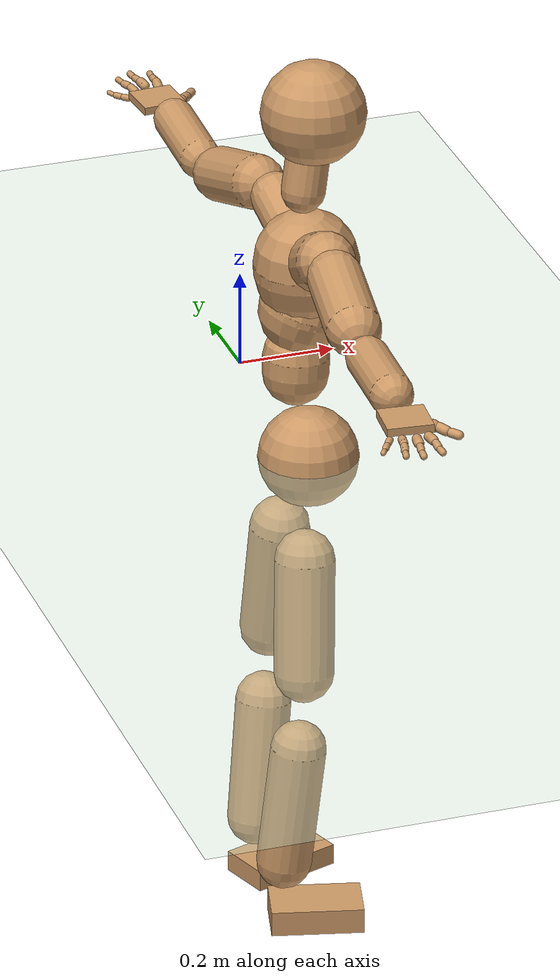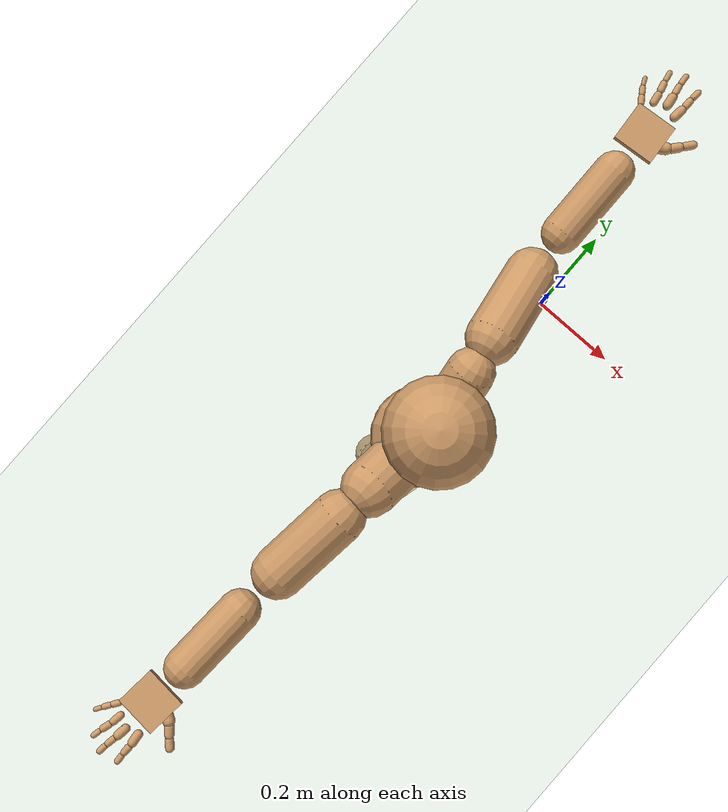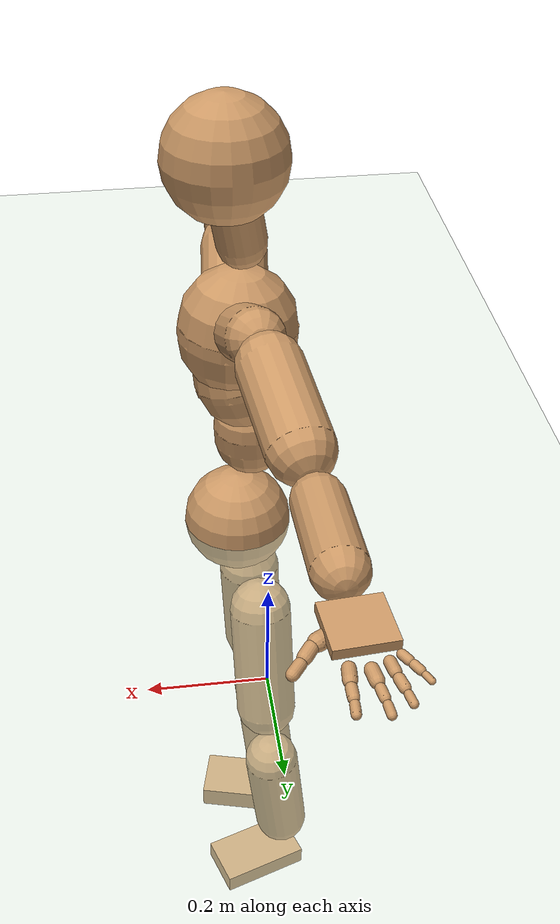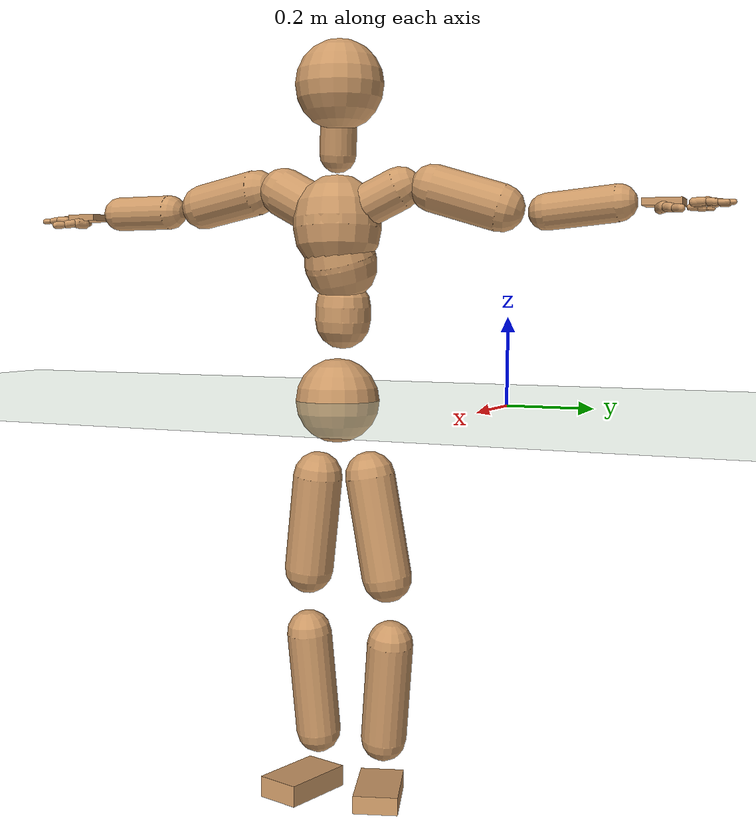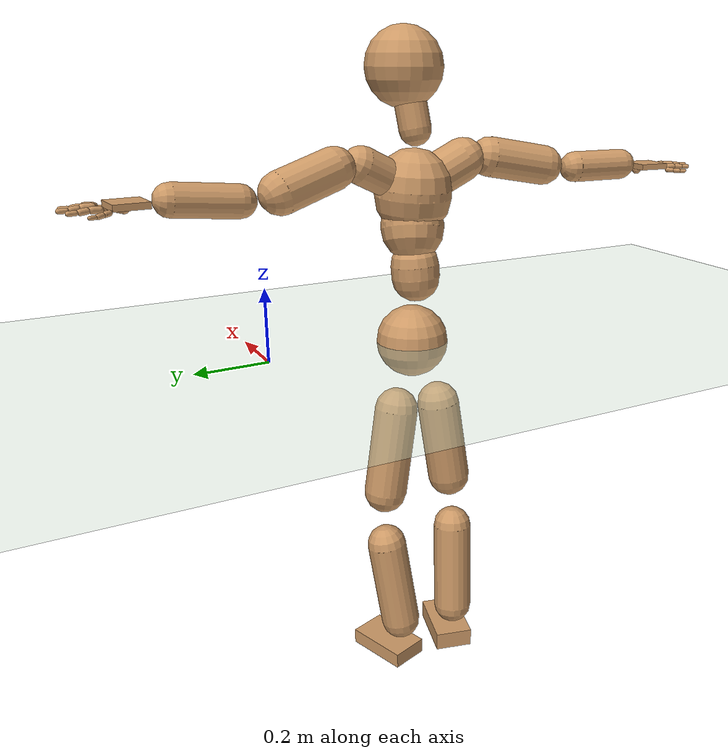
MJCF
<mujoco model="humanoid">
  <compiler coordinate="local" angle="radian"/>
  <default>
    <joint damping="0.0" armature="0.01" stiffness="0.0" limited="true"/>
    <geom conaffinity="1" condim="3" contype="7" margin="0.001" rgba="0.8 0.6 .4 1"/>
  </default>
  <asset>
    <texture type="skybox" builtin="gradient" rgb1=".4 .5 .6" rgb2="0 0 0" width="100" height="100"/>
    <texture builtin="flat" height="1278" mark="cross" markrgb="1 1 1" name="texgeom" random="0.01" rgb1="0.8 0.6 0.4" rgb2="0.8 0.6 0.4" type="cube" width="127"/>
    <texture builtin="checker" height="100" name="texplane" rgb1="0 0 0" rgb2="0.8 0.8 0.8" type="2d" width="100"/>
    <material name="MatPlane" reflectance="0.5" shininess="1" specular="1" texrepeat="60 60" texture="texplane"/>
    <material name="geom" texture="texgeom" texuniform="true"/>
  </asset>
  <worldbody>
    <light cutoff="100" diffuse="1 1 1" dir="-0 0 -1.3" directional="true" exponent="1" pos="0 0 1.3" specular=".1 .1 .1"/>
    <geom conaffinity="1" condim="3" name="floor" pos="0 0 0" rgba="0.8 0.9 0.8 1" size="100 100 .2" type="plane" material="MatPlane"/>
    <body name="Pelvis" pos="0.0008 -0.4273 -0.0031">
      <freejoint name="Pelvis"/>
      <geom type="sphere" contype="1" conaffinity="1" density="500" size="0.1017" pos="0.0000 0.0000 0.0000" name="Pelvis"/>
      <body name="L_Hip" pos="-0.0333 0.0566 -0.1023">
        <joint name="L_Hip_x" type="hinge" pos="0 0 0" axis="1 0 0" stiffness="800" damping="80" armature="0.02" range="-180.0000 180.0000"/>
        <joint name="L_Hip_y" type="hinge" pos="0 0 0" axis="0 1 0" stiffness="800" damping="80" armature="0.02" range="-180.0000 180.0000"/>
        <joint name="L_Hip_z" type="hinge" pos="0 0 0" axis="0 0 1" stiffness="800" damping="80" armature="0.02" range="-180.0000 180.0000"/>
        <geom type="capsule" contype="1" conaffinity="1" density="500" fromto="-0.0026 0.0139 -0.0826 -0.0102 0.0557 -0.3305" size="0.0609" name="L_Hip"/>
        <body name="L_Knee" pos="-0.0128 0.0696 -0.4132">
          <joint name="L_Knee_x" type="hinge" pos="0 0 0" axis="1 0 0" stiffness="800" damping="80" armature="0.02" range="-180.0000 180.0000"/>
          <joint name="L_Knee_y" type="hinge" pos="0 0 0" axis="0 1 0" stiffness="800" damping="80" armature="0.02" range="-180.0000 180.0000"/>
          <joint name="L_Knee_z" type="hinge" pos="0 0 0" axis="0 0 1" stiffness="800" damping="80" armature="0.02" range="-180.0000 180.0000"/>
          <geom type="capsule" contype="1" conaffinity="1" density="500" fromto="-0.0093 -0.0097 -0.0844 -0.0373 -0.0389 -0.3375" size="0.0566" name="L_Knee"/>
          <body name="L_Ankle" pos="-0.0467 -0.0486 -0.4219">
            <joint name="L_Ankle_x" type="hinge" pos="0 0 0" axis="1 0 0" stiffness="800" damping="80" armature="0.02" range="-180.0000 180.0000"/>
            <joint name="L_Ankle_y" type="hinge" pos="0 0 0" axis="0 1 0" stiffness="800" damping="80" armature="0.02" range="-180.0000 180.0000"/>
            <joint name="L_Ankle_z" type="hinge" pos="0 0 0" axis="0 0 1" stiffness="800" damping="80" armature="0.02" range="-180.0000 180.0000"/>
            <geom type="box" contype="1" conaffinity="1" density="500" pos="0.0693 0.0233 -0.0307" size="0.0937 0.0543 0.022" quat="0.9869 0.0000 0.0000 0.1616" name="L_Ankle"/>
            <body name="L_Toe" pos="0.1386 0.0466 -0.0614">
              <joint name="L_Toe_x" type="hinge" pos="0 0 0" axis="1 0 0" stiffness="500" damping="50" armature="0.02" range="-180.0000 180.0000"/>
              <joint name="L_Toe_y" type="hinge" pos="0 0 0" axis="0 1 0" stiffness="500" damping="50" armature="0.02" range="-180.0000 180.0000"/>
              <joint name="L_Toe_z" type="hinge" pos="0 0 0" axis="0 0 1" stiffness="500" damping="50" armature="0.02" range="-180.0000 180.0000"/>
              <geom type="box" contype="1" conaffinity="1" density="500" pos="0.0000 0.0000 0.0304" size="0.0011 0.0026 0.0011" quat="0.9862 0.0000 0.0000 0.1658" name="L_Toe"/>
            </body>
          </body>
        </body>
      </body>
      <body name="R_Hip" pos="-0.0265 -0.0582 -0.1126">
        <joint name="R_Hip_x" type="hinge" pos="0 0 0" axis="1 0 0" stiffness="800" damping="80" armature="0.02" range="-180.0000 180.0000"/>
        <joint name="R_Hip_y" type="hinge" pos="0 0 0" axis="0 1 0" stiffness="800" damping="80" armature="0.02" range="-180.0000 180.0000"/>
        <joint name="R_Hip_z" type="hinge" pos="0 0 0" axis="0 0 1" stiffness="800" damping="80" armature="0.02" range="-180.0000 180.0000"/>
        <geom type="capsule" contype="1" conaffinity="1" density="500" fromto="-0.0041 -0.0105 -0.0792 -0.0162 -0.0420 -0.3168" size="0.0607" name="R_Hip"/>
        <body name="R_Knee" pos="-0.0203 -0.0525 -0.396">
          <joint name="R_Knee_x" type="hinge" pos="0 0 0" axis="1 0 0" stiffness="800" damping="80" armature="0.02" range="-180.0000 180.0000"/>
          <joint name="R_Knee_y" type="hinge" pos="0 0 0" axis="0 1 0" stiffness="800" damping="80" armature="0.02" range="-180.0000 180.0000"/>
          <joint name="R_Knee_z" type="hinge" pos="0 0 0" axis="0 0 1" stiffness="800" damping="80" armature="0.02" range="-180.0000 180.0000"/>
          <geom type="capsule" contype="1" conaffinity="1" density="500" fromto="-0.0091 0.0039 -0.0872 -0.0362 0.0155 -0.3488" size="0.0563" name="R_Knee"/>
          <body name="R_Ankle" pos="-0.0453 0.0194 -0.436">
            <joint name="R_Ankle_x" type="hinge" pos="0 0 0" axis="1 0 0" stiffness="800" damping="80" armature="0.02" range="-180.0000 180.0000"/>
            <joint name="R_Ankle_y" type="hinge" pos="0 0 0" axis="0 1 0" stiffness="800" damping="80" armature="0.02" range="-180.0000 180.0000"/>
            <joint name="R_Ankle_z" type="hinge" pos="0 0 0" axis="0 0 1" stiffness="800" damping="80" armature="0.02" range="-180.0000 180.0000"/>
            <geom type="box" contype="1" conaffinity="1" density="500" pos="0.0724 -0.0183 -0.0303" size="0.0937 0.0551 0.0264" quat="0.9923 0.0000 0.0000 -0.1238" name="R_Ankle"/>
            <body name="R_Toe" pos="0.1447 -0.0367 -0.0606">
              <joint name="R_Toe_x" type="hinge" pos="0 0 0" axis="1 0 0" stiffness="500" damping="50" armature="0.02" range="-180.0000 180.0000"/>
              <joint name="R_Toe_y" type="hinge" pos="0 0 0" axis="0 1 0" stiffness="500" damping="50" armature="0.02" range="-180.0000 180.0000"/>
              <joint name="R_Toe_z" type="hinge" pos="0 0 0" axis="0 0 1" stiffness="500" damping="50" armature="0.02" range="-180.0000 180.0000"/>
              <geom type="box" contype="1" conaffinity="1" density="500" pos="0.0000 0.0000 0.0256" size="0.001 0.0026 0.0011" quat="0.9933 0.0000 0.0000 -0.1158" name="R_Toe"/>
            </body>
          </body>
        </body>
      </body>
      <body name="Torso" pos="-0.03 -0.0019 0.1197">
        <joint name="Torso_x" type="hinge" pos="0 0 0" axis="1 0 0" stiffness="1000" damping="100" armature="0.02" range="-180.0000 180.0000"/>
        <joint name="Torso_y" type="hinge" pos="0 0 0" axis="0 1 0" stiffness="1000" damping="100" armature="0.02" range="-180.0000 180.0000"/>
        <joint name="Torso_z" type="hinge" pos="0 0 0" axis="0 0 1" stiffness="1000" damping="100" armature="0.02" range="-180.0000 180.0000"/>
        <geom type="capsule" contype="1" conaffinity="1" density="500" fromto="0.0054 0.0057 0.1055 0.0036 0.0038 0.0704" size="0.0668" name="Torso"/>
        <body name="Spine" pos="0.009 0.0095 0.1759">
          <joint name="Spine_x" type="hinge" pos="0 0 0" axis="1 0 0" stiffness="1000" damping="100" armature="0.02" range="-180.0000 180.0000"/>
          <joint name="Spine_y" type="hinge" pos="0 0 0" axis="0 1 0" stiffness="1000" damping="100" armature="0.02" range="-180.0000 180.0000"/>
          <joint name="Spine_z" type="hinge" pos="0 0 0" axis="0 0 1" stiffness="1000" damping="100" armature="0.02" range="-180.0000 180.0000"/>
          <geom type="capsule" contype="1" conaffinity="1" density="500" fromto="0.0118 -0.0049 0.0398 0.0079 -0.0033 0.0266" size="0.0868" name="Spine"/>
          <body name="Chest" pos="0.0197 -0.0082 0.0664">
            <joint name="Chest_x" type="hinge" pos="0 0 0" axis="1 0 0" stiffness="1000" damping="100" armature="0.02" range="-180.0000 180.0000"/>
            <joint name="Chest_y" type="hinge" pos="0 0 0" axis="0 1 0" stiffness="1000" damping="100" armature="0.02" range="-180.0000 180.0000"/>
            <joint name="Chest_z" type="hinge" pos="0 0 0" axis="0 0 1" stiffness="1000" damping="100" armature="0.02" range="-180.0000 180.0000"/>
            <geom type="capsule" contype="1" conaffinity="1" density="500" fromto="-0.0047 -0.0021 0.0702 -0.0032 -0.0014 0.0468" size="0.1055" name="Chest"/>
            <body name="Neck" pos="-0.0188 -0.0085 0.1835">
              <joint name="Neck_x" type="hinge" pos="0 0 0" axis="1 0 0" stiffness="500" damping="50" armature="0.02" range="-180.0000 180.0000"/>
              <joint name="Neck_y" type="hinge" pos="0 0 0" axis="0 1 0" stiffness="500" damping="50" armature="0.02" range="-180.0000 180.0000"/>
              <joint name="Neck_z" type="hinge" pos="0 0 0" axis="0 0 1" stiffness="500" damping="50" armature="0.02" range="-180.0000 180.0000"/>
              <geom type="capsule" contype="1" conaffinity="1" density="500" fromto="0.0068 0.0044 0.0390 0.0271 0.0178 0.1561" size="0.0438" name="Neck"/>
              <body name="Head" pos="0.0339 0.0222 0.1951">
                <joint name="Head_x" type="hinge" pos="0 0 0" axis="1 0 0" stiffness="500" damping="50" armature="0.02" range="-180.0000 180.0000"/>
                <joint name="Head_y" type="hinge" pos="0 0 0" axis="0 1 0" stiffness="500" damping="50" armature="0.02" range="-180.0000 180.0000"/>
                <joint name="Head_z" type="hinge" pos="0 0 0" axis="0 0 1" stiffness="500" damping="50" armature="0.02" range="-180.0000 180.0000"/>
                <geom type="sphere" contype="1" conaffinity="1" density="500" size="0.1049" pos="0.0000 0.0000 0.0000" name="Head"/>
              </body>
            </body>
            <body name="L_Thorax" pos="-0.0004 0.0423 0.0837">
              <joint name="L_Thorax_x" type="hinge" pos="0 0 0" axis="1 0 0" stiffness="500" damping="50" armature="0.02" range="-180.0000 180.0000"/>
              <joint name="L_Thorax_y" type="hinge" pos="0 0 0" axis="0 1 0" stiffness="500" damping="50" armature="0.02" range="-180.0000 180.0000"/>
              <joint name="L_Thorax_z" type="hinge" pos="0 0 0" axis="0 0 1" stiffness="500" damping="50" armature="0.02" range="-180.0000 180.0000"/>
              <geom type="capsule" contype="1" conaffinity="1" density="500" fromto="-0.0035 0.0283 0.0137 -0.0141 0.1131 0.0546" size="0.0505" name="L_Thorax"/>
              <body name="L_Shoulder" pos="-0.0176 0.1414 0.0683">
                <joint name="L_Shoulder_x" type="hinge" pos="0 0 0" axis="1 0 0" stiffness="500" damping="50" armature="0.02" range="-180.0000 180.0000"/>
                <joint name="L_Shoulder_y" type="hinge" pos="0 0 0" axis="0 1 0" stiffness="500" damping="50" armature="0.02" range="-180.0000 180.0000"/>
                <joint name="L_Shoulder_z" type="hinge" pos="0 0 0" axis="0 0 1" stiffness="500" damping="50" armature="0.02" range="-180.0000 180.0000"/>
                <geom type="capsule" contype="1" conaffinity="1" density="500" fromto="-0.0084 0.0515 -0.0158 -0.0337 0.2061 -0.0633" size="0.0558" name="L_Shoulder"/>
                <body name="L_Elbow" pos="-0.0421 0.2577 -0.0792">
                  <joint name="L_Elbow_x" type="hinge" pos="0 0 0" axis="1 0 0" stiffness="500" damping="50" armature="0.02" range="-720.0000 720.0000"/>
                  <joint name="L_Elbow_y" type="hinge" pos="0 0 0" axis="0 1 0" stiffness="500" damping="50" armature="0.02" range="-720.0000 720.0000"/>
                  <joint name="L_Elbow_z" type="hinge" pos="0 0 0" axis="0 0 1" stiffness="500" damping="50" armature="0.02" range="-720.0000 720.0000"/>
                  <geom type="capsule" contype="1" conaffinity="1" density="500" fromto="-0.0004 0.0542 0.0050 -0.0017 0.2169 0.0199" size="0.0422" name="L_Elbow"/>
                  <body name="L_Wrist" pos="-0.0021 0.2711 0.0249">
                    <joint name="L_Wrist_x" type="hinge" pos="0 0 0" axis="1 0 0" stiffness="300" damping="30" armature="0.02" range="-180.0000 180.0000"/>
                    <joint name="L_Wrist_y" type="hinge" pos="0 0 0" axis="0 1 0" stiffness="300" damping="30" armature="0.02" range="-180.0000 180.0000"/>
                    <joint name="L_Wrist_z" type="hinge" pos="0 0 0" axis="0 0 1" stiffness="300" damping="30" armature="0.02" range="-180.0000 180.0000"/>
                    <geom type="box" contype="1" conaffinity="1" density="500" pos="-0.0037 0.0448 -0.0063" size="0.0432 0.0449 0.008" quat="0.7356 0.0000 0.0000 -0.6774" name="L_Wrist"/>
                    <body name="L_Index1" pos="0.0196 0.105 -0.0097">
                      <joint name="L_Index1_x" type="hinge" pos="0 0 0" axis="1 0 0" stiffness="100" damping="10" armature="0.02" range="-180.0000 180.0000"/>
                      <joint name="L_Index1_y" type="hinge" pos="0 0 0" axis="0 1 0" stiffness="100" damping="10" armature="0.02" range="-180.0000 180.0000"/>
                      <joint name="L_Index1_z" type="hinge" pos="0 0 0" axis="0 0 1" stiffness="100" damping="10" armature="0.02" range="-180.0000 180.0000"/>
                      <geom type="capsule" contype="1" conaffinity="1" density="500" fromto="0.0007 0.0067 0.0003 0.0028 0.0267 0.0014" size="0.0096" name="L_Index1"/>
                      <body name="L_Index2" pos="0.0035 0.0334 0.0017">
                        <joint name="L_Index2_x" type="hinge" pos="0 0 0" axis="1 0 0" stiffness="100" damping="10" armature="0.02" range="-180.0000 180.0000"/>
                        <joint name="L_Index2_y" type="hinge" pos="0 0 0" axis="0 1 0" stiffness="100" damping="10" armature="0.02" range="-180.0000 180.0000"/>
                        <joint name="L_Index2_z" type="hinge" pos="0 0 0" axis="0 0 1" stiffness="100" damping="10" armature="0.02" range="-180.0000 180.0000"/>
                        <geom type="capsule" contype="1" conaffinity="1" density="500" fromto="-0.0000 0.0047 -0.0005 -0.0001 0.0187 -0.0022" size="0.0078" name="L_Index2"/>
                        <body name="L_Index3" pos="-0.0002 0.0234 -0.0027">
                          <joint name="L_Index3_x" type="hinge" pos="0 0 0" axis="1 0 0" stiffness="100" damping="10" armature="0.02" range="-180.0000 180.0000"/>
                          <joint name="L_Index3_y" type="hinge" pos="0 0 0" axis="0 1 0" stiffness="100" damping="10" armature="0.02" range="-180.0000 180.0000"/>
                          <joint name="L_Index3_z" type="hinge" pos="0 0 0" axis="0 0 1" stiffness="100" damping="10" armature="0.02" range="-180.0000 180.0000"/>
                          <geom type="capsule" contype="1" conaffinity="1" density="500" fromto="0.0004 0.0051 -0.0001 0.0015 0.0203 -0.0006" size="0.0066" name="L_Index3"/>
                        </body>
                      </body>
                    </body>
                    <body name="L_Middle1" pos="-0.0053 0.1132 -0.0067">
                      <joint name="L_Middle1_x" type="hinge" pos="0 0 0" axis="1 0 0" stiffness="100" damping="10" armature="0.02" range="-180.0000 180.0000"/>
                      <joint name="L_Middle1_y" type="hinge" pos="0 0 0" axis="0 1 0" stiffness="100" damping="10" armature="0.02" range="-180.0000 180.0000"/>
                      <joint name="L_Middle1_z" type="hinge" pos="0 0 0" axis="0 0 1" stiffness="100" damping="10" armature="0.02" range="-180.0000 180.0000"/>
                      <geom type="capsule" contype="1" conaffinity="1" density="500" fromto="-0.0009 0.0063 0.0001 -0.0035 0.0253 0.0004" size="0.0098" name="L_Middle1"/>
                      <body name="L_Middle2" pos="-0.0044 0.0317 0.0005">
                        <joint name="L_Middle2_x" type="hinge" pos="0 0 0" axis="1 0 0" stiffness="100" damping="10" armature="0.02" range="-180.0000 180.0000"/>
                        <joint name="L_Middle2_y" type="hinge" pos="0 0 0" axis="0 1 0" stiffness="100" damping="10" armature="0.02" range="-180.0000 180.0000"/>
                        <joint name="L_Middle2_z" type="hinge" pos="0 0 0" axis="0 0 1" stiffness="100" damping="10" armature="0.02" range="-180.0000 180.0000"/>
                        <geom type="capsule" contype="1" conaffinity="1" density="500" fromto="-0.0009 0.0048 -0.0005 -0.0035 0.0194 -0.0019" size="0.0072" name="L_Middle2"/>
                        <body name="L_Middle3" pos="-0.0043 0.0242 -0.0024">
                          <joint name="L_Middle3_x" type="hinge" pos="0 0 0" axis="1 0 0" stiffness="100" damping="10" armature="0.02" range="-180.0000 180.0000"/>
                          <joint name="L_Middle3_y" type="hinge" pos="0 0 0" axis="0 1 0" stiffness="100" damping="10" armature="0.02" range="-180.0000 180.0000"/>
                          <joint name="L_Middle3_z" type="hinge" pos="0 0 0" axis="0 0 1" stiffness="100" damping="10" armature="0.02" range="-180.0000 180.0000"/>
                          <geom type="capsule" contype="1" conaffinity="1" density="500" fromto="-0.0005 0.0052 -0.0001 -0.0019 0.0210 -0.0003" size="0.0063" name="L_Middle3"/>
                        </body>
                      </body>
                    </body>
                    <body name="L_Pinky1" pos="-0.0478 0.0876 -0.0154">
                      <joint name="L_Pinky1_x" type="hinge" pos="0 0 0" axis="1 0 0" stiffness="100" damping="10" armature="0.02" range="-180.0000 180.0000"/>
                      <joint name="L_Pinky1_y" type="hinge" pos="0 0 0" axis="0 1 0" stiffness="100" damping="10" armature="0.02" range="-180.0000 180.0000"/>
                      <joint name="L_Pinky1_z" type="hinge" pos="0 0 0" axis="0 0 1" stiffness="100" damping="10" armature="0.02" range="-180.0000 180.0000"/>
                      <geom type="capsule" contype="1" conaffinity="1" density="500" fromto="-0.0023 0.0034 -0.0003 -0.0092 0.0135 -0.0014" size="0.0069" name="L_Pinky1"/>
                      <body name="L_Pinky2" pos="-0.0115 0.0168 -0.0017">
                        <joint name="L_Pinky2_x" type="hinge" pos="0 0 0" axis="1 0 0" stiffness="100" damping="10" armature="0.02" range="-180.0000 180.0000"/>
                        <joint name="L_Pinky2_y" type="hinge" pos="0 0 0" axis="0 1 0" stiffness="100" damping="10" armature="0.02" range="-180.0000 180.0000"/>
                        <joint name="L_Pinky2_z" type="hinge" pos="0 0 0" axis="0 0 1" stiffness="100" damping="10" armature="0.02" range="-180.0000 180.0000"/>
                        <geom type="capsule" contype="1" conaffinity="1" density="500" fromto="-0.0022 0.0033 -0.0004 -0.0087 0.0133 -0.0014" size="0.0065" name="L_Pinky2"/>
                        <body name="L_Pinky3" pos="-0.0109 0.0167 -0.0018">
                          <joint name="L_Pinky3_x" type="hinge" pos="0 0 0" axis="1 0 0" stiffness="100" damping="10" armature="0.02" range="-180.0000 180.0000"/>
                          <joint name="L_Pinky3_y" type="hinge" pos="0 0 0" axis="0 1 0" stiffness="100" damping="10" armature="0.02" range="-180.0000 180.0000"/>
                          <joint name="L_Pinky3_z" type="hinge" pos="0 0 0" axis="0 0 1" stiffness="100" damping="10" armature="0.02" range="-180.0000 180.0000"/>
                          <geom type="capsule" contype="1" conaffinity="1" density="500" fromto="-0.0018 0.0037 0.0000 -0.0071 0.0149 0.0002" size="0.0049" name="L_Pinky3"/>
                        </body>
                      </body>
                    </body>
                    <body name="L_Ring1" pos="-0.0303 0.1011 -0.0096">
                      <joint name="L_Ring1_x" type="hinge" pos="0 0 0" axis="1 0 0" stiffness="100" damping="10" armature="0.02" range="-180.0000 180.0000"/>
                      <joint name="L_Ring1_y" type="hinge" pos="0 0 0" axis="0 1 0" stiffness="100" damping="10" armature="0.02" range="-180.0000 180.0000"/>
                      <joint name="L_Ring1_z" type="hinge" pos="0 0 0" axis="0 0 1" stiffness="100" damping="10" armature="0.02" range="-180.0000 180.0000"/>
                      <geom type="capsule" contype="1" conaffinity="1" density="500" fromto="-0.0010 0.0059 0.0001 -0.0039 0.0235 0.0006" size="0.0083" name="L_Ring1"/>
                      <body name="L_Ring2" pos="-0.0049 0.0293 0.0007">
                        <joint name="L_Ring2_x" type="hinge" pos="0 0 0" axis="1 0 0" stiffness="100" damping="10" armature="0.02" range="-180.0000 180.0000"/>
                        <joint name="L_Ring2_y" type="hinge" pos="0 0 0" axis="0 1 0" stiffness="100" damping="10" armature="0.02" range="-180.0000 180.0000"/>
                        <joint name="L_Ring2_z" type="hinge" pos="0 0 0" axis="0 0 1" stiffness="100" damping="10" armature="0.02" range="-180.0000 180.0000"/>
                        <geom type="capsule" contype="1" conaffinity="1" density="500" fromto="-0.0013 0.0048 -0.0004 -0.0054 0.0190 -0.0017" size="0.0077" name="L_Ring2"/>
                        <body name="L_Ring3" pos="-0.0067 0.0238 -0.0022">
                          <joint name="L_Ring3_x" type="hinge" pos="0 0 0" axis="1 0 0" stiffness="100" damping="10" armature="0.02" range="-180.0000 180.0000"/>
                          <joint name="L_Ring3_y" type="hinge" pos="0 0 0" axis="0 1 0" stiffness="100" damping="10" armature="0.02" range="-180.0000 180.0000"/>
                          <joint name="L_Ring3_z" type="hinge" pos="0 0 0" axis="0 0 1" stiffness="100" damping="10" armature="0.02" range="-180.0000 180.0000"/>
                          <geom type="capsule" contype="1" conaffinity="1" density="500" fromto="-0.0009 0.0052 -0.0000 -0.0038 0.0206 -0.0001" size="0.0059" name="L_Ring3"/>
                        </body>
                      </body>
                    </body>
                    <body name="L_Thumb1" pos="0.027 0.0407 -0.0212">
                      <joint name="L_Thumb1_x" type="hinge" pos="0 0 0" axis="1 0 0" stiffness="100" damping="10" armature="0.02" range="-180.0000 180.0000"/>
                      <joint name="L_Thumb1_y" type="hinge" pos="0 0 0" axis="0 1 0" stiffness="100" damping="10" armature="0.02" range="-180.0000 180.0000"/>
                      <joint name="L_Thumb1_z" type="hinge" pos="0 0 0" axis="0 0 1" stiffness="100" damping="10" armature="0.02" range="-180.0000 180.0000"/>
                      <geom type="capsule" contype="1" conaffinity="1" density="500" fromto="0.0055 0.0034 0.0004 0.0219 0.0137 0.0015" size="0.013" name="L_Thumb1"/>
                      <body name="L_Thumb2" pos="0.0274 0.0171 0.0019">
                        <joint name="L_Thumb2_x" type="hinge" pos="0 0 0" axis="1 0 0" stiffness="100" damping="10" armature="0.02" range="-180.0000 180.0000"/>
                        <joint name="L_Thumb2_y" type="hinge" pos="0 0 0" axis="0 1 0" stiffness="100" damping="10" armature="0.02" range="-180.0000 180.0000"/>
                        <joint name="L_Thumb2_z" type="hinge" pos="0 0 0" axis="0 0 1" stiffness="100" damping="10" armature="0.02" range="-180.0000 180.0000"/>
                        <geom type="capsule" contype="1" conaffinity="1" density="500" fromto="0.0034 0.0043 -0.0009 0.0135 0.0173 -0.0035" size="0.0102" name="L_Thumb2"/>
                        <body name="L_Thumb3" pos="0.0168 0.0216 -0.0044">
                          <joint name="L_Thumb3_x" type="hinge" pos="0 0 0" axis="1 0 0" stiffness="100" damping="10" armature="0.02" range="-180.0000 180.0000"/>
                          <joint name="L_Thumb3_y" type="hinge" pos="0 0 0" axis="0 1 0" stiffness="100" damping="10" armature="0.02" range="-180.0000 180.0000"/>
                          <joint name="L_Thumb3_z" type="hinge" pos="0 0 0" axis="0 0 1" stiffness="100" damping="10" armature="0.02" range="-180.0000 180.0000"/>
                          <geom type="capsule" contype="1" conaffinity="1" density="500" fromto="0.0038 0.0047 -0.0005 0.0151 0.0189 -0.0019" size="0.0089" name="L_Thumb3"/>
                        </body>
                      </body>
                    </body>
                  </body>
                </body>
              </body>
            </body>
            <body name="R_Thorax" pos="-0.0045 -0.0443 0.084">
              <joint name="R_Thorax_x" type="hinge" pos="0 0 0" axis="1 0 0" stiffness="500" damping="50" armature="0.02" range="-180.0000 180.0000"/>
              <joint name="R_Thorax_y" type="hinge" pos="0 0 0" axis="0 1 0" stiffness="500" damping="50" armature="0.02" range="-180.0000 180.0000"/>
              <joint name="R_Thorax_z" type="hinge" pos="0 0 0" axis="0 0 1" stiffness="500" damping="50" armature="0.02" range="-180.0000 180.0000"/>
              <geom type="capsule" contype="1" conaffinity="1" density="500" fromto="-0.0026 -0.0263 0.0134 -0.0104 -0.1053 0.0536" size="0.0594" name="R_Thorax"/>
              <body name="R_Shoulder" pos="-0.0131 -0.1316 0.067">
                <joint name="R_Shoulder_x" type="hinge" pos="0 0 0" axis="1 0 0" stiffness="500" damping="50" armature="0.02" range="-180.0000 180.0000"/>
                <joint name="R_Shoulder_y" type="hinge" pos="0 0 0" axis="0 1 0" stiffness="500" damping="50" armature="0.02" range="-180.0000 180.0000"/>
                <joint name="R_Shoulder_z" type="hinge" pos="0 0 0" axis="0 0 1" stiffness="500" damping="50" armature="0.02" range="-180.0000 180.0000"/>
                <geom type="capsule" contype="1" conaffinity="1" density="500" fromto="-0.0063 -0.0550 -0.0099 -0.0251 -0.2199 -0.0396" size="0.055" name="R_Shoulder"/>
                <body name="R_Elbow" pos="-0.0313 -0.2748 -0.0494">
                  <joint name="R_Elbow_x" type="hinge" pos="0 0 0" axis="1 0 0" stiffness="500" damping="50" armature="0.02" range="-720.0000 720.0000"/>
                  <joint name="R_Elbow_y" type="hinge" pos="0 0 0" axis="0 1 0" stiffness="500" damping="50" armature="0.02" range="-720.0000 720.0000"/>
                  <joint name="R_Elbow_z" type="hinge" pos="0 0 0" axis="0 0 1" stiffness="500" damping="50" armature="0.02" range="-720.0000 720.0000"/>
                  <geom type="capsule" contype="1" conaffinity="1" density="500" fromto="-0.0025 -0.0525 -0.0001 -0.0101 -0.2101 -0.0003" size="0.0432" name="R_Elbow"/>
                  <body name="R_Wrist" pos="-0.0126 -0.2626 -0.0004">
                    <joint name="R_Wrist_x" type="hinge" pos="0 0 0" axis="1 0 0" stiffness="300" damping="30" armature="0.02" range="-180.0000 180.0000"/>
                    <joint name="R_Wrist_y" type="hinge" pos="0 0 0" axis="0 1 0" stiffness="300" damping="30" armature="0.02" range="-180.0000 180.0000"/>
                    <joint name="R_Wrist_z" type="hinge" pos="0 0 0" axis="0 0 1" stiffness="300" damping="30" armature="0.02" range="-180.0000 180.0000"/>
                    <geom type="box" contype="1" conaffinity="1" density="500" pos="-0.0041 -0.0445 -0.0080" size="0.0432 0.0458 0.0082" quat="0.7385 0.0000 0.0000 0.6743" name="R_Wrist"/>
                    <body name="R_Index1" pos="0.0188 -0.1046 -0.0132">
                      <joint name="R_Index1_x" type="hinge" pos="0 0 0" axis="1 0 0" stiffness="100" damping="10" armature="0.02" range="-180.0000 180.0000"/>
                      <joint name="R_Index1_y" type="hinge" pos="0 0 0" axis="0 1 0" stiffness="100" damping="10" armature="0.02" range="-180.0000 180.0000"/>
                      <joint name="R_Index1_z" type="hinge" pos="0 0 0" axis="0 0 1" stiffness="100" damping="10" armature="0.02" range="-180.0000 180.0000"/>
                      <geom type="capsule" contype="1" conaffinity="1" density="500" fromto="0.0007 -0.0067 0.0003 0.0028 -0.0267 0.0014" size="0.0096" name="R_Index1"/>
                      <body name="R_Index2" pos="0.0035 -0.0334 0.0017">
                        <joint name="R_Index2_x" type="hinge" pos="0 0 0" axis="1 0 0" stiffness="100" damping="10" armature="0.02" range="-180.0000 180.0000"/>
                        <joint name="R_Index2_y" type="hinge" pos="0 0 0" axis="0 1 0" stiffness="100" damping="10" armature="0.02" range="-180.0000 180.0000"/>
                        <joint name="R_Index2_z" type="hinge" pos="0 0 0" axis="0 0 1" stiffness="100" damping="10" armature="0.02" range="-180.0000 180.0000"/>
                        <geom type="capsule" contype="1" conaffinity="1" density="500" fromto="-0.0000 -0.0047 -0.0005 -0.0002 -0.0187 -0.0022" size="0.0078" name="R_Index2"/>
                        <body name="R_Index3" pos="-0.0002 -0.0234 -0.0027">
                          <joint name="R_Index3_x" type="hinge" pos="0 0 0" axis="1 0 0" stiffness="100" damping="10" armature="0.02" range="-180.0000 180.0000"/>
                          <joint name="R_Index3_y" type="hinge" pos="0 0 0" axis="0 1 0" stiffness="100" damping="10" armature="0.02" range="-180.0000 180.0000"/>
                          <joint name="R_Index3_z" type="hinge" pos="0 0 0" axis="0 0 1" stiffness="100" damping="10" armature="0.02" range="-180.0000 180.0000"/>
                          <geom type="capsule" contype="1" conaffinity="1" density="500" fromto="0.0004 -0.0043 -0.0001 0.0014 -0.0171 -0.0006" size="0.0069" name="R_Index3"/>
                        </body>
                      </body>
                    </body>
                    <body name="R_Middle1" pos="-0.0061 -0.1127 -0.0102">
                      <joint name="R_Middle1_x" type="hinge" pos="0 0 0" axis="1 0 0" stiffness="100" damping="10" armature="0.02" range="-180.0000 180.0000"/>
                      <joint name="R_Middle1_y" type="hinge" pos="0 0 0" axis="0 1 0" stiffness="100" damping="10" armature="0.02" range="-180.0000 180.0000"/>
                      <joint name="R_Middle1_z" type="hinge" pos="0 0 0" axis="0 0 1" stiffness="100" damping="10" armature="0.02" range="-180.0000 180.0000"/>
                      <geom type="capsule" contype="1" conaffinity="1" density="500" fromto="-0.0009 -0.0063 0.0001 -0.0035 -0.0253 0.0004" size="0.0098" name="R_Middle1"/>
                      <body name="R_Middle2" pos="-0.0044 -0.0317 0.0005">
                        <joint name="R_Middle2_x" type="hinge" pos="0 0 0" axis="1 0 0" stiffness="100" damping="10" armature="0.02" range="-180.0000 180.0000"/>
                        <joint name="R_Middle2_y" type="hinge" pos="0 0 0" axis="0 1 0" stiffness="100" damping="10" armature="0.02" range="-180.0000 180.0000"/>
                        <joint name="R_Middle2_z" type="hinge" pos="0 0 0" axis="0 0 1" stiffness="100" damping="10" armature="0.02" range="-180.0000 180.0000"/>
                        <geom type="capsule" contype="1" conaffinity="1" density="500" fromto="-0.0009 -0.0048 -0.0005 -0.0035 -0.0194 -0.0019" size="0.0072" name="R_Middle2"/>
                        <body name="R_Middle3" pos="-0.0043 -0.0242 -0.0024">
                          <joint name="R_Middle3_x" type="hinge" pos="0 0 0" axis="1 0 0" stiffness="100" damping="10" armature="0.02" range="-180.0000 180.0000"/>
                          <joint name="R_Middle3_y" type="hinge" pos="0 0 0" axis="0 1 0" stiffness="100" damping="10" armature="0.02" range="-180.0000 180.0000"/>
                          <joint name="R_Middle3_z" type="hinge" pos="0 0 0" axis="0 0 1" stiffness="100" damping="10" armature="0.02" range="-180.0000 180.0000"/>
                          <geom type="capsule" contype="1" conaffinity="1" density="500" fromto="-0.0005 -0.0044 -0.0001 -0.0019 -0.0178 -0.0003" size="0.0066" name="R_Middle3"/>
                        </body>
                      </body>
                    </body>
                    <body name="R_Pinky1" pos="-0.0485 -0.0871 -0.0189">
                      <joint name="R_Pinky1_x" type="hinge" pos="0 0 0" axis="1 0 0" stiffness="100" damping="10" armature="0.02" range="-180.0000 180.0000"/>
                      <joint name="R_Pinky1_y" type="hinge" pos="0 0 0" axis="0 1 0" stiffness="100" damping="10" armature="0.02" range="-180.0000 180.0000"/>
                      <joint name="R_Pinky1_z" type="hinge" pos="0 0 0" axis="0 0 1" stiffness="100" damping="10" armature="0.02" range="-180.0000 180.0000"/>
                      <geom type="capsule" contype="1" conaffinity="1" density="500" fromto="-0.0023 -0.0034 -0.0003 -0.0092 -0.0135 -0.0014" size="0.0069" name="R_Pinky1"/>
                      <body name="R_Pinky2" pos="-0.0115 -0.0168 -0.0017">
                        <joint name="R_Pinky2_x" type="hinge" pos="0 0 0" axis="1 0 0" stiffness="100" damping="10" armature="0.02" range="-180.0000 180.0000"/>
                        <joint name="R_Pinky2_y" type="hinge" pos="0 0 0" axis="0 1 0" stiffness="100" damping="10" armature="0.02" range="-180.0000 180.0000"/>
                        <joint name="R_Pinky2_z" type="hinge" pos="0 0 0" axis="0 0 1" stiffness="100" damping="10" armature="0.02" range="-180.0000 180.0000"/>
                        <geom type="capsule" contype="1" conaffinity="1" density="500" fromto="-0.0022 -0.0033 -0.0004 -0.0087 -0.0133 -0.0014" size="0.0065" name="R_Pinky2"/>
                        <body name="R_Pinky3" pos="-0.0109 -0.0167 -0.0018">
                          <joint name="R_Pinky3_x" type="hinge" pos="0 0 0" axis="1 0 0" stiffness="100" damping="10" armature="0.02" range="-180.0000 180.0000"/>
                          <joint name="R_Pinky3_y" type="hinge" pos="0 0 0" axis="0 1 0" stiffness="100" damping="10" armature="0.02" range="-180.0000 180.0000"/>
                          <joint name="R_Pinky3_z" type="hinge" pos="0 0 0" axis="0 0 1" stiffness="100" damping="10" armature="0.02" range="-180.0000 180.0000"/>
                          <geom type="capsule" contype="1" conaffinity="1" density="500" fromto="-0.0018 -0.0029 0.0000 -0.0071 -0.0117 0.0002" size="0.0052" name="R_Pinky3"/>
                        </body>
                      </body>
                    </body>
                    <body name="R_Ring1" pos="-0.031 -0.1007 -0.0131">
                      <joint name="R_Ring1_x" type="hinge" pos="0 0 0" axis="1 0 0" stiffness="100" damping="10" armature="0.02" range="-180.0000 180.0000"/>
                      <joint name="R_Ring1_y" type="hinge" pos="0 0 0" axis="0 1 0" stiffness="100" damping="10" armature="0.02" range="-180.0000 180.0000"/>
                      <joint name="R_Ring1_z" type="hinge" pos="0 0 0" axis="0 0 1" stiffness="100" damping="10" armature="0.02" range="-180.0000 180.0000"/>
                      <geom type="capsule" contype="1" conaffinity="1" density="500" fromto="-0.0010 -0.0059 0.0001 -0.0039 -0.0235 0.0006" size="0.0083" name="R_Ring1"/>
                      <body name="R_Ring2" pos="-0.0049 -0.0293 0.0007">
                        <joint name="R_Ring2_x" type="hinge" pos="0 0 0" axis="1 0 0" stiffness="100" damping="10" armature="0.02" range="-180.0000 180.0000"/>
                        <joint name="R_Ring2_y" type="hinge" pos="0 0 0" axis="0 1 0" stiffness="100" damping="10" armature="0.02" range="-180.0000 180.0000"/>
                        <joint name="R_Ring2_z" type="hinge" pos="0 0 0" axis="0 0 1" stiffness="100" damping="10" armature="0.02" range="-180.0000 180.0000"/>
                        <geom type="capsule" contype="1" conaffinity="1" density="500" fromto="-0.0013 -0.0048 -0.0004 -0.0054 -0.0190 -0.0017" size="0.0077" name="R_Ring2"/>
                        <body name="R_Ring3" pos="-0.0067 -0.0238 -0.0022">
                          <joint name="R_Ring3_x" type="hinge" pos="0 0 0" axis="1 0 0" stiffness="100" damping="10" armature="0.02" range="-180.0000 180.0000"/>
                          <joint name="R_Ring3_y" type="hinge" pos="0 0 0" axis="0 1 0" stiffness="100" damping="10" armature="0.02" range="-180.0000 180.0000"/>
                          <joint name="R_Ring3_z" type="hinge" pos="0 0 0" axis="0 0 1" stiffness="100" damping="10" armature="0.02" range="-180.0000 180.0000"/>
                          <geom type="capsule" contype="1" conaffinity="1" density="500" fromto="-0.0009 -0.0044 -0.0000 -0.0038 -0.0174 -0.0001" size="0.0062" name="R_Ring3"/>
                        </body>
                      </body>
                    </body>
                    <body name="R_Thumb1" pos="0.0262 -0.0403 -0.0248">
                      <joint name="R_Thumb1_x" type="hinge" pos="0 0 0" axis="1 0 0" stiffness="100" damping="10" armature="0.02" range="-180.0000 180.0000"/>
                      <joint name="R_Thumb1_y" type="hinge" pos="0 0 0" axis="0 1 0" stiffness="100" damping="10" armature="0.02" range="-180.0000 180.0000"/>
                      <joint name="R_Thumb1_z" type="hinge" pos="0 0 0" axis="0 0 1" stiffness="100" damping="10" armature="0.02" range="-180.0000 180.0000"/>
                      <geom type="capsule" contype="1" conaffinity="1" density="500" fromto="0.0055 -0.0034 0.0004 0.0219 -0.0137 0.0015" size="0.013" name="R_Thumb1"/>
                      <body name="R_Thumb2" pos="0.0274 -0.0171 0.0019">
                        <joint name="R_Thumb2_x" type="hinge" pos="0 0 0" axis="1 0 0" stiffness="100" damping="10" armature="0.02" range="-180.0000 180.0000"/>
                        <joint name="R_Thumb2_y" type="hinge" pos="0 0 0" axis="0 1 0" stiffness="100" damping="10" armature="0.02" range="-180.0000 180.0000"/>
                        <joint name="R_Thumb2_z" type="hinge" pos="0 0 0" axis="0 0 1" stiffness="100" damping="10" armature="0.02" range="-180.0000 180.0000"/>
                        <geom type="capsule" contype="1" conaffinity="1" density="500" fromto="0.0034 -0.0043 -0.0009 0.0135 -0.0173 -0.0035" size="0.0102" name="R_Thumb2"/>
                        <body name="R_Thumb3" pos="0.0168 -0.0216 -0.0044">
                          <joint name="R_Thumb3_x" type="hinge" pos="0 0 0" axis="1 0 0" stiffness="100" damping="10" armature="0.02" range="-180.0000 180.0000"/>
                          <joint name="R_Thumb3_y" type="hinge" pos="0 0 0" axis="0 1 0" stiffness="100" damping="10" armature="0.02" range="-180.0000 180.0000"/>
                          <joint name="R_Thumb3_z" type="hinge" pos="0 0 0" axis="0 0 1" stiffness="100" damping="10" armature="0.02" range="-180.0000 180.0000"/>
                          <geom type="capsule" contype="1" conaffinity="1" density="500" fromto="0.0038 -0.0039 -0.0005 0.0151 -0.0157 -0.0019" size="0.0092" name="R_Thumb3"/>
                        </body>
                      </body>
                    </body>
                  </body>
                </body>
              </body>
            </body>
          </body>
        </body>
      </body>
    </body>
  </worldbody>
  <actuator>
    <motor name="L_Hip_x" joint="L_Hip_x" gear="500"/>
    <motor name="L_Hip_y" joint="L_Hip_y" gear="500"/>
    <motor name="L_Hip_z" joint="L_Hip_z" gear="500"/>
    <motor name="L_Knee_x" joint="L_Knee_x" gear="500"/>
    <motor name="L_Knee_y" joint="L_Knee_y" gear="500"/>
    <motor name="L_Knee_z" joint="L_Knee_z" gear="500"/>
    <motor name="L_Ankle_x" joint="L_Ankle_x" gear="500"/>
    <motor name="L_Ankle_y" joint="L_Ankle_y" gear="500"/>
    <motor name="L_Ankle_z" joint="L_Ankle_z" gear="500"/>
    <motor name="L_Toe_x" joint="L_Toe_x" gear="500"/>
    <motor name="L_Toe_y" joint="L_Toe_y" gear="500"/>
    <motor name="L_Toe_z" joint="L_Toe_z" gear="500"/>
    <motor name="R_Hip_x" joint="R_Hip_x" gear="500"/>
    <motor name="R_Hip_y" joint="R_Hip_y" gear="500"/>
    <motor name="R_Hip_z" joint="R_Hip_z" gear="500"/>
    <motor name="R_Knee_x" joint="R_Knee_x" gear="500"/>
    <motor name="R_Knee_y" joint="R_Knee_y" gear="500"/>
    <motor name="R_Knee_z" joint="R_Knee_z" gear="500"/>
    <motor name="R_Ankle_x" joint="R_Ankle_x" gear="500"/>
    <motor name="R_Ankle_y" joint="R_Ankle_y" gear="500"/>
    <motor name="R_Ankle_z" joint="R_Ankle_z" gear="500"/>
    <motor name="R_Toe_x" joint="R_Toe_x" gear="500"/>
    <motor name="R_Toe_y" joint="R_Toe_y" gear="500"/>
    <motor name="R_Toe_z" joint="R_Toe_z" gear="500"/>
    <motor name="Torso_x" joint="Torso_x" gear="500"/>
    <motor name="Torso_y" joint="Torso_y" gear="500"/>
    <motor name="Torso_z" joint="Torso_z" gear="500"/>
    <motor name="Spine_x" joint="Spine_x" gear="500"/>
    <motor name="Spine_y" joint="Spine_y" gear="500"/>
    <motor name="Spine_z" joint="Spine_z" gear="500"/>
    <motor name="Chest_x" joint="Chest_x" gear="500"/>
    <motor name="Chest_y" joint="Chest_y" gear="500"/>
    <motor name="Chest_z" joint="Chest_z" gear="500"/>
    <motor name="Neck_x" joint="Neck_x" gear="500"/>
    <motor name="Neck_y" joint="Neck_y" gear="500"/>
    <motor name="Neck_z" joint="Neck_z" gear="500"/>
    <motor name="Head_x" joint="Head_x" gear="500"/>
    <motor name="Head_y" joint="Head_y" gear="500"/>
    <motor name="Head_z" joint="Head_z" gear="500"/>
    <motor name="L_Thorax_x" joint="L_Thorax_x" gear="500"/>
    <motor name="L_Thorax_y" joint="L_Thorax_y" gear="500"/>
    <motor name="L_Thorax_z" joint="L_Thorax_z" gear="500"/>
    <motor name="L_Shoulder_x" joint="L_Shoulder_x" gear="500"/>
    <motor name="L_Shoulder_y" joint="L_Shoulder_y" gear="500"/>
    <motor name="L_Shoulder_z" joint="L_Shoulder_z" gear="500"/>
    <motor name="L_Elbow_x" joint="L_Elbow_x" gear="500"/>
    <motor name="L_Elbow_y" joint="L_Elbow_y" gear="500"/>
    <motor name="L_Elbow_z" joint="L_Elbow_z" gear="500"/>
    <motor name="L_Wrist_x" joint="L_Wrist_x" gear="500"/>
    <motor name="L_Wrist_y" joint="L_Wrist_y" gear="500"/>
    <motor name="L_Wrist_z" joint="L_Wrist_z" gear="500"/>
    <motor name="L_Index1_x" joint="L_Index1_x" gear="500"/>
    <motor name="L_Index1_y" joint="L_Index1_y" gear="500"/>
    <motor name="L_Index1_z" joint="L_Index1_z" gear="500"/>
    <motor name="L_Index2_x" joint="L_Index2_x" gear="500"/>
    <motor name="L_Index2_y" joint="L_Index2_y" gear="500"/>
    <motor name="L_Index2_z" joint="L_Index2_z" gear="500"/>
    <motor name="L_Index3_x" joint="L_Index3_x" gear="500"/>
    <motor name="L_Index3_y" joint="L_Index3_y" gear="500"/>
    <motor name="L_Index3_z" joint="L_Index3_z" gear="500"/>
    <motor name="L_Middle1_x" joint="L_Middle1_x" gear="500"/>
    <motor name="L_Middle1_y" joint="L_Middle1_y" gear="500"/>
    <motor name="L_Middle1_z" joint="L_Middle1_z" gear="500"/>
    <motor name="L_Middle2_x" joint="L_Middle2_x" gear="500"/>
    <motor name="L_Middle2_y" joint="L_Middle2_y" gear="500"/>
    <motor name="L_Middle2_z" joint="L_Middle2_z" gear="500"/>
    <motor name="L_Middle3_x" joint="L_Middle3_x" gear="500"/>
    <motor name="L_Middle3_y" joint="L_Middle3_y" gear="500"/>
    <motor name="L_Middle3_z" joint="L_Middle3_z" gear="500"/>
    <motor name="L_Pinky1_x" joint="L_Pinky1_x" gear="500"/>
    <motor name="L_Pinky1_y" joint="L_Pinky1_y" gear="500"/>
    <motor name="L_Pinky1_z" joint="L_Pinky1_z" gear="500"/>
    <motor name="L_Pinky2_x" joint="L_Pinky2_x" gear="500"/>
    <motor name="L_Pinky2_y" joint="L_Pinky2_y" gear="500"/>
    <motor name="L_Pinky2_z" joint="L_Pinky2_z" gear="500"/>
    <motor name="L_Pinky3_x" joint="L_Pinky3_x" gear="500"/>
    <motor name="L_Pinky3_y" joint="L_Pinky3_y" gear="500"/>
    <motor name="L_Pinky3_z" joint="L_Pinky3_z" gear="500"/>
    <motor name="L_Ring1_x" joint="L_Ring1_x" gear="500"/>
    <motor name="L_Ring1_y" joint="L_Ring1_y" gear="500"/>
    <motor name="L_Ring1_z" joint="L_Ring1_z" gear="500"/>
    <motor name="L_Ring2_x" joint="L_Ring2_x" gear="500"/>
    <motor name="L_Ring2_y" joint="L_Ring2_y" gear="500"/>
    <motor name="L_Ring2_z" joint="L_Ring2_z" gear="500"/>
    <motor name="L_Ring3_x" joint="L_Ring3_x" gear="500"/>
    <motor name="L_Ring3_y" joint="L_Ring3_y" gear="500"/>
    <motor name="L_Ring3_z" joint="L_Ring3_z" gear="500"/>
    <motor name="L_Thumb1_x" joint="L_Thumb1_x" gear="500"/>
    <motor name="L_Thumb1_y" joint="L_Thumb1_y" gear="500"/>
    <motor name="L_Thumb1_z" joint="L_Thumb1_z" gear="500"/>
    <motor name="L_Thumb2_x" joint="L_Thumb2_x" gear="500"/>
    <motor name="L_Thumb2_y" joint="L_Thumb2_y" gear="500"/>
    <motor name="L_Thumb2_z" joint="L_Thumb2_z" gear="500"/>
    <motor name="L_Thumb3_x" joint="L_Thumb3_x" gear="500"/>
    <motor name="L_Thumb3_y" joint="L_Thumb3_y" gear="500"/>
    <motor name="L_Thumb3_z" joint="L_Thumb3_z" gear="500"/>
    <motor name="R_Thorax_x" joint="R_Thorax_x" gear="500"/>
    <motor name="R_Thorax_y" joint="R_Thorax_y" gear="500"/>
    <motor name="R_Thorax_z" joint="R_Thorax_z" gear="500"/>
    <motor name="R_Shoulder_x" joint="R_Shoulder_x" gear="500"/>
    <motor name="R_Shoulder_y" joint="R_Shoulder_y" gear="500"/>
    <motor name="R_Shoulder_z" joint="R_Shoulder_z" gear="500"/>
    <motor name="R_Elbow_x" joint="R_Elbow_x" gear="500"/>
    <motor name="R_Elbow_y" joint="R_Elbow_y" gear="500"/>
    <motor name="R_Elbow_z" joint="R_Elbow_z" gear="500"/>
    <motor name="R_Wrist_x" joint="R_Wrist_x" gear="500"/>
    <motor name="R_Wrist_y" joint="R_Wrist_y" gear="500"/>
    <motor name="R_Wrist_z" joint="R_Wrist_z" gear="500"/>
    <motor name="R_Index1_x" joint="R_Index1_x" gear="500"/>
    <motor name="R_Index1_y" joint="R_Index1_y" gear="500"/>
    <motor name="R_Index1_z" joint="R_Index1_z" gear="500"/>
    <motor name="R_Index2_x" joint="R_Index2_x" gear="500"/>
    <motor name="R_Index2_y" joint="R_Index2_y" gear="500"/>
    <motor name="R_Index2_z" joint="R_Index2_z" gear="500"/>
    <motor name="R_Index3_x" joint="R_Index3_x" gear="500"/>
    <motor name="R_Index3_y" joint="R_Index3_y" gear="500"/>
    <motor name="R_Index3_z" joint="R_Index3_z" gear="500"/>
    <motor name="R_Middle1_x" joint="R_Middle1_x" gear="500"/>
    <motor name="R_Middle1_y" joint="R_Middle1_y" gear="500"/>
    <motor name="R_Middle1_z" joint="R_Middle1_z" gear="500"/>
    <motor name="R_Middle2_x" joint="R_Middle2_x" gear="500"/>
    <motor name="R_Middle2_y" joint="R_Middle2_y" gear="500"/>
    <motor name="R_Middle2_z" joint="R_Middle2_z" gear="500"/>
    <motor name="R_Middle3_x" joint="R_Middle3_x" gear="500"/>
    <motor name="R_Middle3_y" joint="R_Middle3_y" gear="500"/>
    <motor name="R_Middle3_z" joint="R_Middle3_z" gear="500"/>
    <motor name="R_Pinky1_x" joint="R_Pinky1_x" gear="500"/>
    <motor name="R_Pinky1_y" joint="R_Pinky1_y" gear="500"/>
    <motor name="R_Pinky1_z" joint="R_Pinky1_z" gear="500"/>
    <motor name="R_Pinky2_x" joint="R_Pinky2_x" gear="500"/>
    <motor name="R_Pinky2_y" joint="R_Pinky2_y" gear="500"/>
    <motor name="R_Pinky2_z" joint="R_Pinky2_z" gear="500"/>
    <motor name="R_Pinky3_x" joint="R_Pinky3_x" gear="500"/>
    <motor name="R_Pinky3_y" joint="R_Pinky3_y" gear="500"/>
    <motor name="R_Pinky3_z" joint="R_Pinky3_z" gear="500"/>
    <motor name="R_Ring1_x" joint="R_Ring1_x" gear="500"/>
    <motor name="R_Ring1_y" joint="R_Ring1_y" gear="500"/>
    <motor name="R_Ring1_z" joint="R_Ring1_z" gear="500"/>
    <motor name="R_Ring2_x" joint="R_Ring2_x" gear="500"/>
    <motor name="R_Ring2_y" joint="R_Ring2_y" gear="500"/>
    <motor name="R_Ring2_z" joint="R_Ring2_z" gear="500"/>
    <motor name="R_Ring3_x" joint="R_Ring3_x" gear="500"/>
    <motor name="R_Ring3_y" joint="R_Ring3_y" gear="500"/>
    <motor name="R_Ring3_z" joint="R_Ring3_z" gear="500"/>
    <motor name="R_Thumb1_x" joint="R_Thumb1_x" gear="500"/>
    <motor name="R_Thumb1_y" joint="R_Thumb1_y" gear="500"/>
    <motor name="R_Thumb1_z" joint="R_Thumb1_z" gear="500"/>
    <motor name="R_Thumb2_x" joint="R_Thumb2_x" gear="500"/>
    <motor name="R_Thumb2_y" joint="R_Thumb2_y" gear="500"/>
    <motor name="R_Thumb2_z" joint="R_Thumb2_z" gear="500"/>
    <motor name="R_Thumb3_x" joint="R_Thumb3_x" gear="500"/>
    <motor name="R_Thumb3_y" joint="R_Thumb3_y" gear="500"/>
    <motor name="R_Thumb3_z" joint="R_Thumb3_z" gear="500"/>
  </actuator>
  <contact>
    <exclude body1="Torso" body2="Chest"/>
    <exclude body1="Head" body2="Chest"/>
    <exclude body1="R_Knee" body2="R_Toe"/>
    <exclude body1="R_Knee" body2="L_Ankle"/>
    <exclude body1="R_Knee" body2="L_Toe"/>
    <exclude body1="L_Knee" body2="L_Toe"/>
    <exclude body1="L_Knee" body2="R_Ankle"/>
    <exclude body1="L_Knee" body2="R_Toe"/>
    <exclude body1="L_Shoulder" body2="Chest"/>
    <exclude body1="R_Shoulder" body2="Chest"/>
  </contact>
  <sensor/>
  <size njmax="700" nconmax="700"/>
</mujoco>
